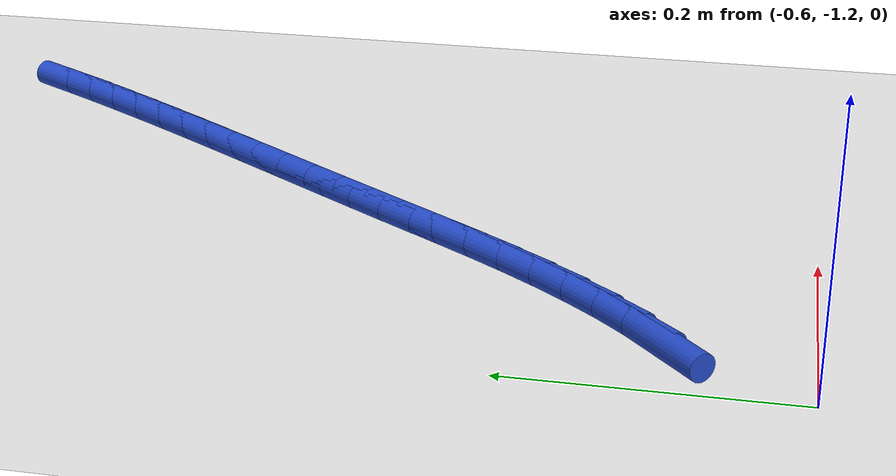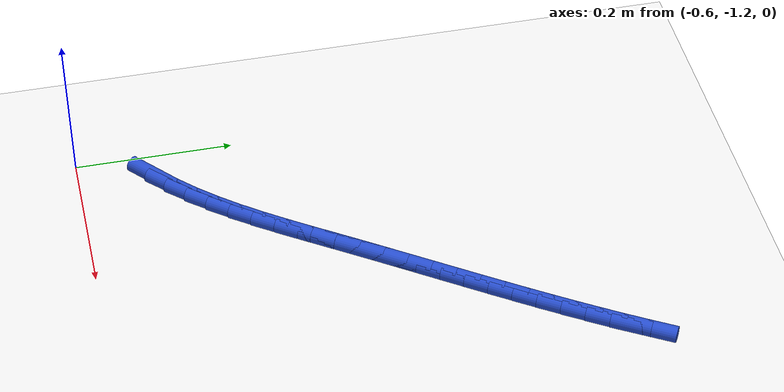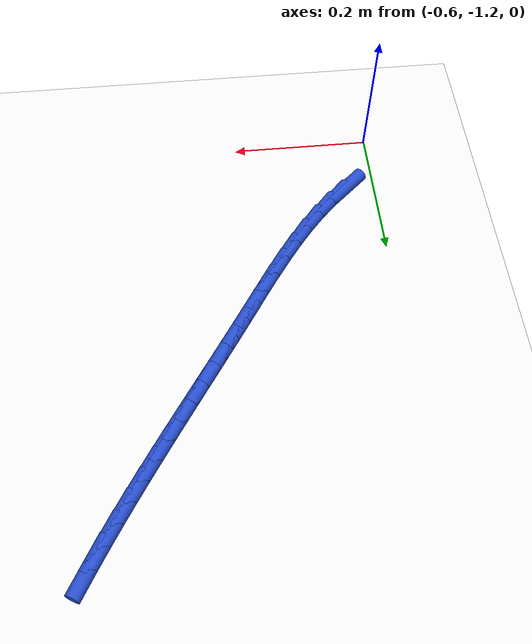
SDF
<sdf version="1.6">
 <world name="default">
  <model name="ground_plane">
   <static>1</static>
   <link name="link">
    <collision name="collision">
     <geometry><plane><normal>0 0 1</normal><size>100 100</size></plane></geometry>
     <surface><friction><ode><mu>100</mu><mu2>50</mu2></ode></friction></surface>
    </collision>
    <visual name="visual">
     <cast_shadows>0</cast_shadows>
     <geometry><plane><normal>0 0 1</normal><size>100 100</size></plane></geometry>
     <material>
      <script><uri>file://media/materials/scripts/gazebo.material</uri><name>Gazebo/WhiteGlow</name></script>
     </material>
    </visual>
   </link>
  </model>
  <model name="line">
   <link name="link_219">
    <pose>-0.5526799969740998 -1.1029601379405127 0.01 0 1.57 0.7263781646881553</pose>
    <collision name="collision">
     <geometry><cylinder><radius>0.01</radius><length>0.08</length></cylinder></geometry>
    </collision>
    <visual name="visual">
     <material>
      <script><name>Gazebo/Blue</name><uri>file://media/materials/scripts/gazebo.material</uri></script>
     </material>
     <geometry><cylinder><radius>0.01</radius><length>0.08</length></cylinder></geometry>
    </visual>
   </link>
   <link name="link_220">
    <pose>-0.5300259487198757 -1.082833916916656 0.01 0 1.57 0.7916521986355985</pose>
    <collision name="collision">
     <geometry><cylinder><radius>0.01</radius><length>0.08</length></cylinder></geometry>
    </collision>
    <visual name="visual">
     <material>
      <script><name>Gazebo/Blue</name><uri>file://media/materials/scripts/gazebo.material</uri></script>
     </material>
     <geometry><cylinder><radius>0.01</radius><length>0.08</length></cylinder></geometry>
    </visual>
   </link>
   <link name="link_221">
    <pose>-0.5085904521329087 -1.0611286127237427 0.01 0 1.57 0.8467638000689673</pose>
    <collision name="collision">
     <geometry><cylinder><radius>0.01</radius><length>0.08</length></cylinder></geometry>
    </collision>
    <visual name="visual">
     <material>
      <script><name>Gazebo/Blue</name><uri>file://media/materials/scripts/gazebo.material</uri></script>
     </material>
     <geometry><cylinder><radius>0.01</radius><length>0.08</length></cylinder></geometry>
    </visual>
   </link>
   <link name="link_222">
    <pose>-0.4882104868938531 -1.0380802928324364 0.01 0 1.57 0.8919482554572239</pose>
    <collision name="collision">
     <geometry><cylinder><radius>0.01</radius><length>0.08</length></cylinder></geometry>
    </collision>
    <visual name="visual">
     <material>
      <script><name>Gazebo/Blue</name><uri>file://media/materials/scripts/gazebo.material</uri></script>
     </material>
     <geometry><cylinder><radius>0.01</radius><length>0.08</length></cylinder></geometry>
    </visual>
   </link>
   <link name="link_223">
    <pose>-0.46872303268336357 -1.0139250247134004 0.01 0 1.57 0.9275931657759029</pose>
    <collision name="collision">
     <geometry><cylinder><radius>0.01</radius><length>0.08</length></cylinder></geometry>
    </collision>
    <visual name="visual">
     <material>
      <script><name>Gazebo/Blue</name><uri>file://media/materials/scripts/gazebo.material</uri></script>
     </material>
     <geometry><cylinder><radius>0.01</radius><length>0.08</length></cylinder></geometry>
    </visual>
   </link>
   <link name="link_224">
    <pose>-0.4499650691820953 -0.9888988758372987 0.01 0 1.57 0.9541108144189085</pose>
    <collision name="collision">
     <geometry><cylinder><radius>0.01</radius><length>0.08</length></cylinder></geometry>
    </collision>
    <visual name="visual">
     <material>
      <script><name>Gazebo/Blue</name><uri>file://media/materials/scripts/gazebo.material</uri></script>
     </material>
     <geometry><cylinder><radius>0.01</radius><length>0.08</length></cylinder></geometry>
    </visual>
   </link>
   <link name="link_225">
    <pose>-0.4317735760707028 -0.963237913674795 0.01 0 1.57 0.9718521277477663</pose>
    <collision name="collision">
     <geometry><cylinder><radius>0.01</radius><length>0.08</length></cylinder></geometry>
    </collision>
    <visual name="visual">
     <material>
      <script><name>Gazebo/Blue</name><uri>file://media/materials/scripts/gazebo.material</uri></script>
     </material>
     <geometry><cylinder><radius>0.01</radius><length>0.08</length></cylinder></geometry>
    </visual>
   </link>
   <link name="link_226">
    <pose>-0.4139855330298415 -0.9371782056965532 0.01 0 1.57 0.9810526642733578</pose>
    <collision name="collision">
     <geometry><cylinder><radius>0.01</radius><length>0.08</length></cylinder></geometry>
    </collision>
    <visual name="visual">
     <material>
      <script><name>Gazebo/Blue</name><uri>file://media/materials/scripts/gazebo.material</uri></script>
     </material>
     <geometry><cylinder><radius>0.01</radius><length>0.08</length></cylinder></geometry>
    </visual>
   </link>
   <link name="link_227">
    <pose>-0.3964379197401654 -0.910955819373236 0.01 0 1.57 0.9818412088574069</pose>
    <collision name="collision">
     <geometry><cylinder><radius>0.01</radius><length>0.08</length></cylinder></geometry>
    </collision>
    <visual name="visual">
     <material>
      <script><name>Gazebo/Blue</name><uri>file://media/materials/scripts/gazebo.material</uri></script>
     </material>
     <geometry><cylinder><radius>0.01</radius><length>0.08</length></cylinder></geometry>
    </visual>
   </link>
   <link name="link_228">
    <pose>-0.3789685098114947 -0.8848057068985477 0.01 0 1.57 0.9775915485958604</pose>
    <collision name="collision">
     <geometry><cylinder><radius>0.01</radius><length>0.08</length></cylinder></geometry>
    </collision>
    <visual name="visual">
     <material>
      <script><name>Gazebo/Blue</name><uri>file://media/materials/scripts/gazebo.material</uri></script>
     </material>
     <geometry><cylinder><radius>0.01</radius><length>0.08</length></cylinder></geometry>
    </visual>
   </link>
   <link name="link_229">
    <pose>-0.36148182980632587 -0.8588690488382987 0.01 0 1.57 0.974249459981521</pose>
    <collision name="collision">
     <geometry><cylinder><radius>0.01</radius><length>0.08</length></cylinder></geometry>
    </collision>
    <visual name="visual">
     <material>
      <script><name>Gazebo/Blue</name><uri>file://media/materials/scripts/gazebo.material</uri></script>
     </material>
     <geometry><cylinder><radius>0.01</radius><length>0.08</length></cylinder></geometry>
    </visual>
   </link>
   <link name="link_230">
    <pose>-0.3439986835730189 -0.8331236845135386 0.01 0 1.57 0.9724406408050106</pose>
    <collision name="collision">
     <geometry><cylinder><radius>0.01</radius><length>0.08</length></cylinder></geometry>
    </collision>
    <visual name="visual">
     <material>
      <script><name>Gazebo/Blue</name><uri>file://media/materials/scripts/gazebo.material</uri></script>
     </material>
     <geometry><cylinder><radius>0.01</radius><length>0.08</length></cylinder></geometry>
    </visual>
   </link>
   <link name="link_231">
    <pose>-0.32655154050050855 -0.8075310660042099 0.01 0 1.57 0.9721893654996143</pose>
    <collision name="collision">
     <geometry><cylinder><radius>0.01</radius><length>0.08</length></cylinder></geometry>
    </collision>
    <visual name="visual">
     <material>
      <script><name>Gazebo/Blue</name><uri>file://media/materials/scripts/gazebo.material</uri></script>
     </material>
     <geometry><cylinder><radius>0.01</radius><length>0.08</length></cylinder></geometry>
    </visual>
   </link>
   <link name="link_232">
    <pose>-0.3091728699777296 -0.7820526453902558 0.01 0 1.57 0.9735161860223852</pose>
    <collision name="collision">
     <geometry><cylinder><radius>0.01</radius><length>0.08</length></cylinder></geometry>
    </collision>
    <visual name="visual">
     <material>
      <script><name>Gazebo/Blue</name><uri>file://media/materials/scripts/gazebo.material</uri></script>
     </material>
     <geometry><cylinder><radius>0.01</radius><length>0.08</length></cylinder></geometry>
    </visual>
   </link>
   <link name="link_233">
    <pose>-0.29189514139361683 -0.7566498747516197 0.01 0 1.57 0.9764377773730892</pose>
    <collision name="collision">
     <geometry><cylinder><radius>0.01</radius><length>0.08</length></cylinder></geometry>
    </collision>
    <visual name="visual">
     <material>
      <script><name>Gazebo/Blue</name><uri>file://media/materials/scripts/gazebo.material</uri></script>
     </material>
     <geometry><cylinder><radius>0.01</radius><length>0.08</length></cylinder></geometry>
    </visual>
   </link>
   <link name="link_234">
    <pose>-0.2747508241371051 -0.7312842061682445 0.01 0 1.57 0.9809666856450655</pose>
    <collision name="collision">
     <geometry><cylinder><radius>0.01</radius><length>0.08</length></cylinder></geometry>
    </collision>
    <visual name="visual">
     <material>
      <script><name>Gazebo/Blue</name><uri>file://media/materials/scripts/gazebo.material</uri></script>
     </material>
     <geometry><cylinder><radius>0.01</radius><length>0.08</length></cylinder></geometry>
    </visual>
   </link>
   <link name="link_235">
    <pose>-0.2577723875971294 -0.7059170917200739 0.01 0 1.57 0.9871109736801144</pose>
    <collision name="collision">
     <geometry><cylinder><radius>0.01</radius><length>0.08</length></cylinder></geometry>
    </collision>
    <visual name="visual">
     <material>
      <script><name>Gazebo/Blue</name><uri>file://media/materials/scripts/gazebo.material</uri></script>
     </material>
     <geometry><cylinder><radius>0.01</radius><length>0.08</length></cylinder></geometry>
    </visual>
   </link>
   <link name="link_236">
    <pose>-0.24099230116262396 -0.6805099834870497 0.01 0 1.57 0.9948737637169506</pose>
    <collision name="collision">
     <geometry><cylinder><radius>0.01</radius><length>0.08</length></cylinder></geometry>
    </collision>
    <visual name="visual">
     <material>
      <script><name>Gazebo/Blue</name><uri>file://media/materials/scripts/gazebo.material</uri></script>
     </material>
     <geometry><cylinder><radius>0.01</radius><length>0.08</length></cylinder></geometry>
    </visual>
   </link>
   <link name="link_237">
    <pose>-0.22444303422252465 -0.6550243335491169 0.01 0 1.57 1.0042526815166068</pose>
    <collision name="collision">
     <geometry><cylinder><radius>0.01</radius><length>0.08</length></cylinder></geometry>
    </collision>
    <visual name="visual">
     <material>
      <script><name>Gazebo/Blue</name><uri>file://media/materials/scripts/gazebo.material</uri></script>
     </material>
     <geometry><cylinder><radius>0.01</radius><length>0.08</length></cylinder></geometry>
    </visual>
   </link>
   <link name="link_238">
    <pose>-0.20815705616576585 -0.629421593986218 0.01 0 1.57 1.0152392123867913</pose>
    <collision name="collision">
     <geometry><cylinder><radius>0.01</radius><length>0.08</length></cylinder></geometry>
    </collision>
    <visual name="visual">
     <material>
      <script><name>Gazebo/Blue</name><uri>file://media/materials/scripts/gazebo.material</uri></script>
     </material>
     <geometry><cylinder><radius>0.01</radius><length>0.08</length></cylinder></geometry>
    </visual>
   </link>
   <link name="link_239">
    <pose>-0.19216683638128254 -0.6036632168782964 0.01 0 1.57 1.0278179863070285</pose>
    <collision name="collision">
     <geometry><cylinder><radius>0.01</radius><length>0.08</length></cylinder></geometry>
    </collision>
    <visual name="visual">
     <material>
      <script><name>Gazebo/Blue</name><uri>file://media/materials/scripts/gazebo.material</uri></script>
     </material>
     <geometry><cylinder><radius>0.01</radius><length>0.08</length></cylinder></geometry>
    </visual>
   </link>
   <link name="link_240">
    <pose>-0.17650484425800939 -0.5777106543052948 0.01 0 1.57 1.0419660168542342</pose>
    <collision name="collision">
     <geometry><cylinder><radius>0.01</radius><length>0.08</length></cylinder></geometry>
    </collision>
    <visual name="visual">
     <material>
      <script><name>Gazebo/Blue</name><uri>file://media/materials/scripts/gazebo.material</uri></script>
     </material>
     <geometry><cylinder><radius>0.01</radius><length>0.08</length></cylinder></geometry>
    </visual>
   </link>
  </model>
 </world>
</sdf>
